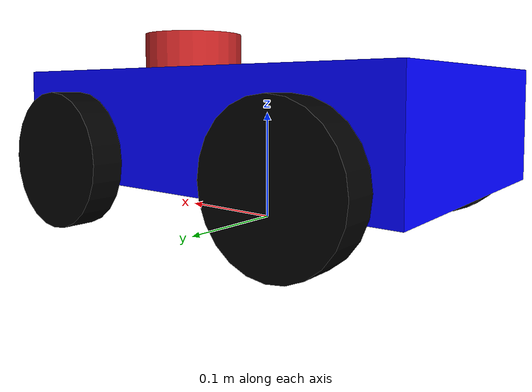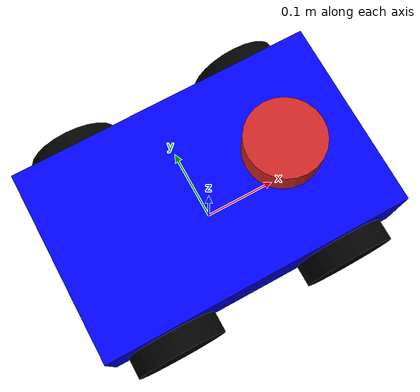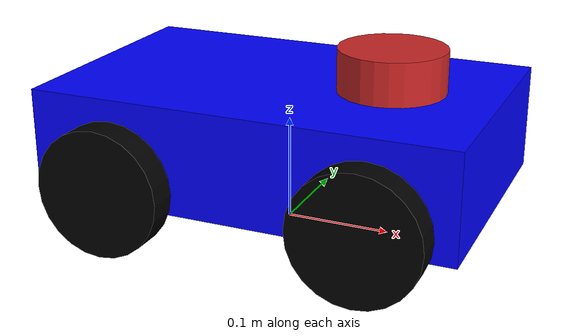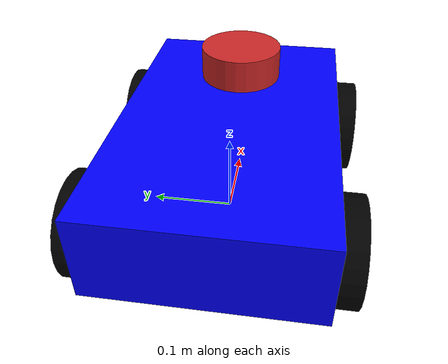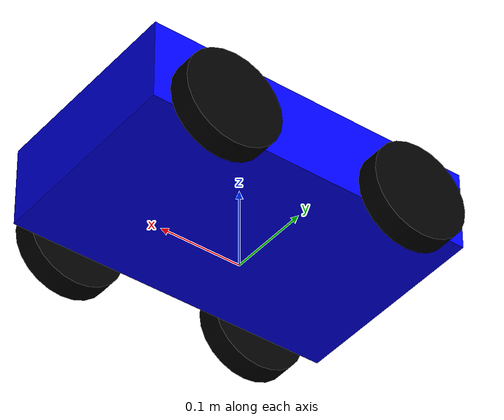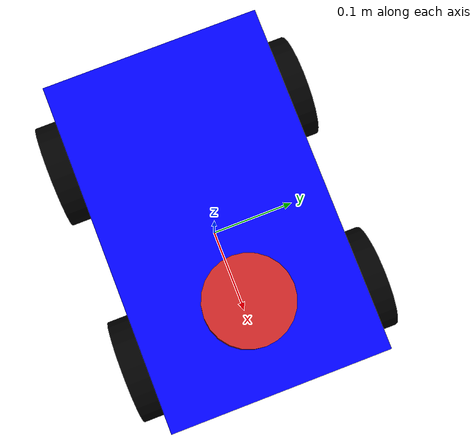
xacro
<?xml version="1.0"?>
<!-- http://wiki.ros.org/urdf/XML/link  -->
<robot xmlns:xacro="http://www.ros.org/wiki/xacro" name="four_wheels">

    <!-- Define constants -->
    <xacro:property name="pi" value="1.570795"/>

    <xacro:property name="base_mass" value="1.0"/>
    <xacro:property name="base_length" value="0.4"/>
    <xacro:property name="base_width" value="0.25"/>
    <xacro:property name="base_height" value="0.1"/>
    <xacro:property name="base_wheel_distance" value="0.02"/>

    <xacro:property name="wheel_mass" value="0.1"/>
    <xacro:property name="wheel_separation" value="${base_width + wheel_length}"/>
    <xacro:property name="wheel_radius" value="0.06"/>
    <xacro:property name="wheel_length" value="0.028"/>

    <xacro:property name="laser_mass" value="0.1"/>
    <xacro:property name="laser_radius" value="0.05"/>
    <xacro:property name="laser_length" value="0.04"/>
    <xacro:property name="laser_distance_z" value="${base_height/2 + laser_length/2}"/>
    <xacro:property name="laser_distance_x" value="0.1"/>

    <!-- Include the common gazebo macros -->
    <xacro:include filename="$(find skid_steer_robot)/urdf/common_gazebo.xacro" />
    <xacro:include filename="$(find skid_steer_robot)/urdf/inertial_macro.xacro" />

    <!-- This is the base of the robot -->
    <link name="base_footprint"/>

    <!-- This is the body of the robot -->
    <link name="body_link">
        <xacro:inertial_box mass="${base_mass}" x="${base_length}" y="${base_width}" z="${base_height}">
            <origin xyz="0 0 0" rpy="0 0 0"/>
        </xacro:inertial_box>
        <visual>
            <origin rpy="0 0 0" xyz="0 0 0"/>
            <geometry>
                <box size="${base_length} ${base_width} ${base_height}" />
            </geometry>

            <material name="blue">
                <color rgba="0 0 1 1"/>
            </material>
        </visual>
        <collision>
            <origin rpy="0 0 0" xyz="0 0 0"/>
            <geometry>
                <box size="${base_length} ${base_width} ${base_height}" />
            </geometry>
        </collision>
    </link>

    <joint name="base_joint" type="fixed">
        <origin xyz="0.0 0.0 ${base_height/2 - base_wheel_distance + wheel_radius}" rpy="0.0 0.0 0.0"/>
        <parent link="base_footprint"/>
        <child link="body_link"/>
        <axis xyz="0.0 0.0 0.0"/>
        <limit lower="0.0" upper="0.0" effort="0.0" velocity="0.0"/>
    </joint>

    <!-- Define the wheel macro -->
    <xacro:macro name="wheel" params="name x y z">
        <joint name="${name}_joint" type="continuous" >
            <parent link="body_link"/>
            <child  link="${name}_link" />
            <origin xyz="${x} ${y} ${z}" rpy="0 0 0" />
            <axis xyz="0 1 0"/>
        </joint>
        <link name="${name}_link">
            <xacro:inertial_cylinder mass="${wheel_mass}" length="${wheel_length}" radius="${wheel_radius}">
                <origin xyz="0 0 0" rpy="0 0 0"/>
            </xacro:inertial_cylinder>
            <visual>
                <origin rpy="${pi} 0 0" xyz="0 0 0"/>
                <geometry>
                    <cylinder length="${wheel_length}" radius="${wheel_radius}"/>
                </geometry>

                <material name="black">
                    <color rgba="0 0 0 1"/>
                </material>
            </visual>
            <collision>
                <origin rpy="${pi} 0 0" xyz="0 0 0"/>
                <geometry>
                    <cylinder length="${wheel_length}" radius="${wheel_radius}"/>
                </geometry>
            </collision>
        </link>
    </xacro:macro>

    <xacro:wheel name="rear_right" x="${-base_length * 0.3}" y="${-base_width/2 - wheel_length/2}" z="${base_wheel_distance - base_height/2}"/>
    <xacro:wheel name="rear_left"  x="${-base_length * 0.3}" y="${base_width/2 + wheel_length/2}" z="${base_wheel_distance - base_height/2}"/>
    <xacro:wheel name="front_right" x="${base_length * 0.3}" y="${-base_width/2 - wheel_length/2}" z="${base_wheel_distance - base_height/2}"/>
    <xacro:wheel name="front_left" x="${base_length * 0.3}" y="${base_width/2 + wheel_length/2}" z="${base_wheel_distance - base_height/2}"/>

    <!-- Include the skid steering drive plugin -->
    <xacro:include filename="$(find skid_steer_robot)/urdf/skid_steering_drive_gazebo.xacro" />

    <!-- Include the lidar -->
    <xacro:include filename="$(find skid_steer_robot)/urdf/lidar.xacro" />

</robot>

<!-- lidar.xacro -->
<robot xmlns:xacro="http://www.ros.org/wiki/xacro" >

    <joint name="laser_joint" type="fixed">
        <parent link="body_link"/>
        <child link="laser_link"/>
        <origin xyz="${laser_distance_x} 0 ${laser_distance_z}" rpy="0 0 0"/>
    </joint>

    <link name="laser_link">
        <visual>
            <geometry>
                <cylinder radius="${laser_radius}" length="${laser_length}"/>
            </geometry>
            <material name="red"/>
        </visual>
        <collision>
            <geometry>
                <cylinder radius="${laser_radius}" length="${laser_length}"/>
            </geometry>
        </collision>
        <xacro:inertial_cylinder mass="${laser_mass}" radius="${laser_radius}" length="${laser_length}">
            <origin xyz="0 0 0" rpy="0 0 0"/>
        </xacro:inertial_cylinder>
    </link>

    <gazebo reference="laser_link">
        <material>Gazebo/Red</material>

        <sensor name="laser" type="ray">
            <pose> 0 0 0 0 0 0 </pose>
            <visualize>true</visualize>
            <update_rate>10</update_rate>
            <ray>
                <scan>
                    <horizontal>
                        <samples>360</samples>
                        <min_angle>0</min_angle>
                        <max_angle>6.28</max_angle>
                    </horizontal>
                </scan>
                <range>
                    <min>0.22</min>
                    <max>6</max>
                </range>
            </ray>
            <plugin name="laser_controller" filename="libgazebo_ros_ray_sensor.so">
                <ros>
                    <argument>~/out:=scan</argument>
                </ros>
                <output_type>sensor_msgs/LaserScan</output_type>
                <frame_name>laser_link</frame_name>
            </plugin>
        </sensor>
    </gazebo>

</robot>
